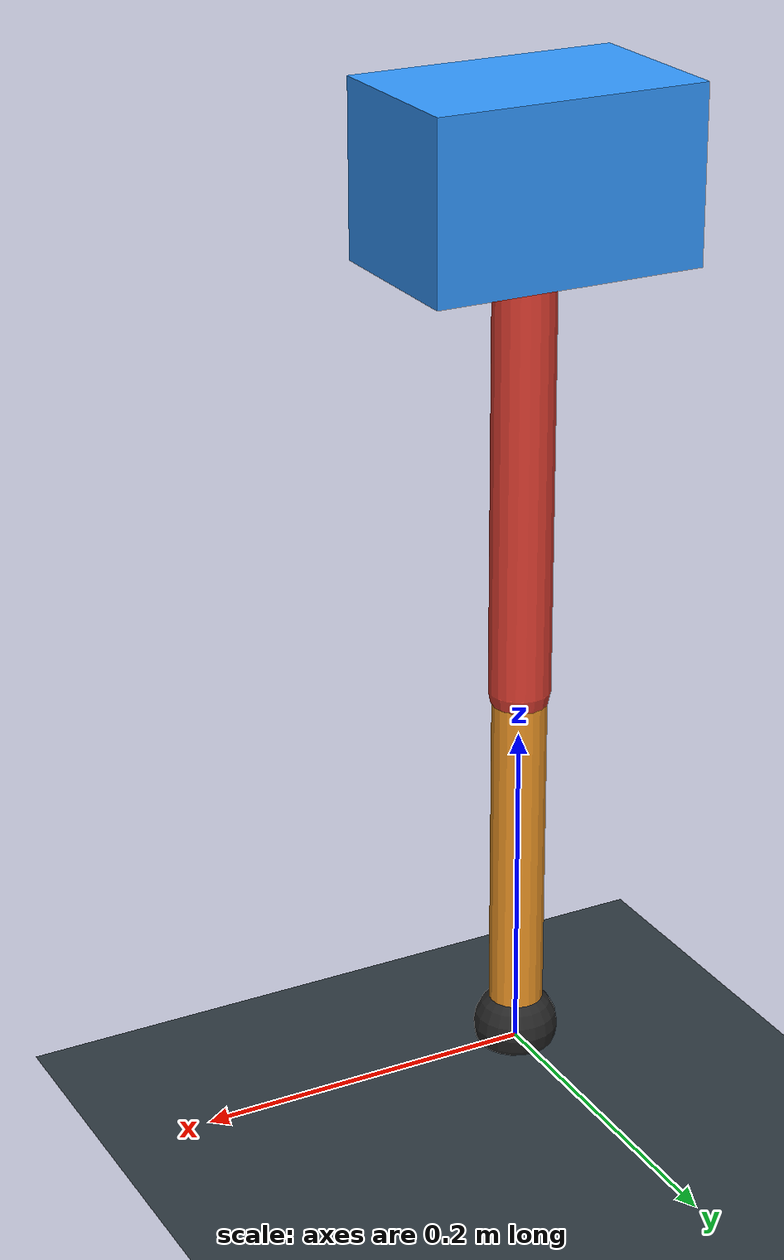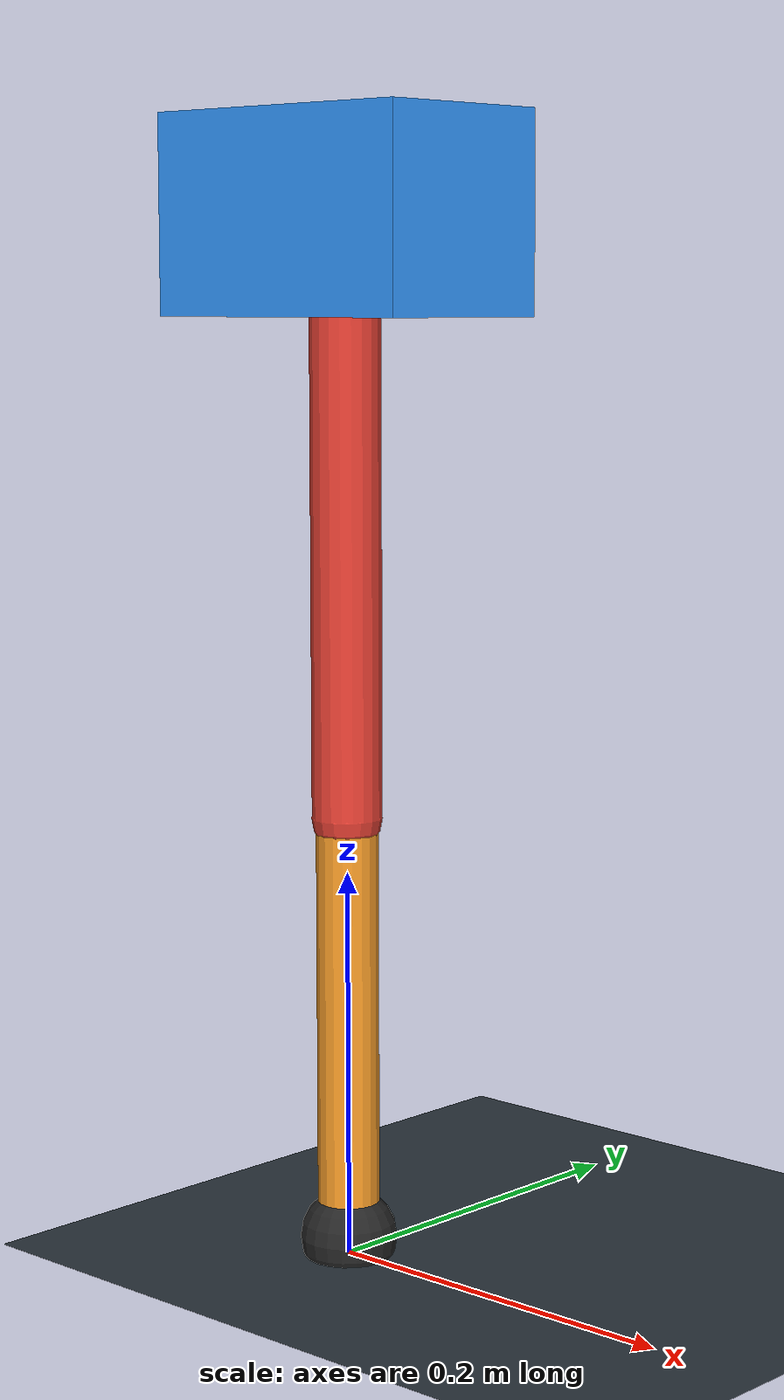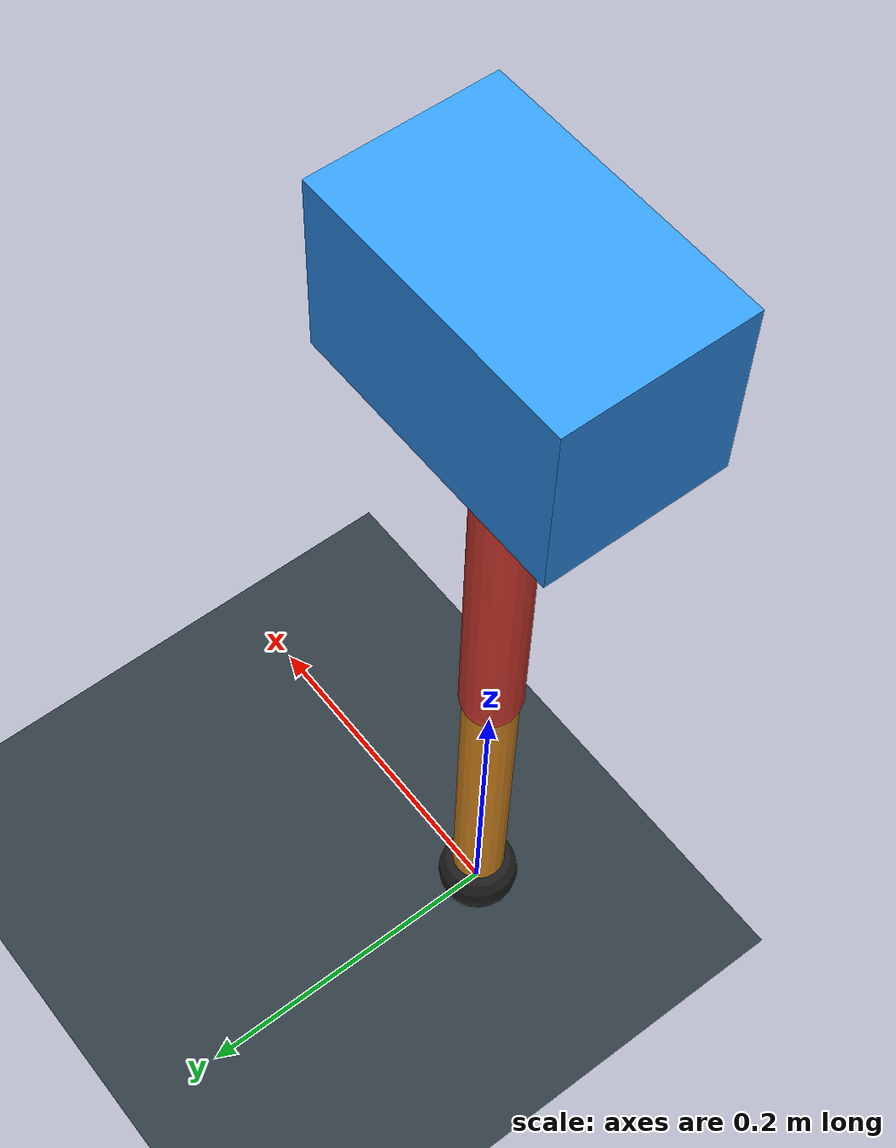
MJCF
<mujoco model="single_axis_two_bar">
  <compiler angle="radian" inertiafromgeom="true"/>
  <option timestep="0.001" integrator="implicitfast" gravity="0 0 -9.81"/>
  <default>
    <joint damping="0.08"/>
    <geom friction="1.2 0.01 0.0001" condim="3"/>
  </default>
  <worldbody>
    <geom name="floor" type="plane" size="5 5 0.1" rgba="0.18 0.22 0.25 1"/>
    <body name="carriage" pos="0 0 0.5298929722395257">
      <joint name="pole_slide" type="slide" axis="0 0 1"/>
      <geom name="payload" type="box" size="0.08 0.05 0.05" mass="2.501220454153189" rgba="0.2 0.6 1 1"/>
      <body name="thigh" pos="0 0 0">
        <joint name="hip" type="hinge" axis="0 1 0"/>
        <geom name="thigh_link" type="capsule" fromto="0 0 0 0 0 -0.30140839030589905" size="0.018" mass="0.21475746085343853" rgba="0.9 0.25 0.2 1"/>
        <body name="shank" pos="0 0 -0.30140839030589905">
          <joint name="knee" type="hinge" axis="0 1 0"/>
          <geom name="shank_link" type="capsule" fromto="0 0 0 0 0 -0.21909982849773563" size="0.016" mass="0.15611152295343597" rgba="0.95 0.6 0.15 1"/>
          <geom name="foot" type="sphere" pos="0 0 -0.21909982849773563" size="0.025" mass="0.03" rgba="0.15 0.15 0.15 1"/>
          <site name="toe" pos="0 0 -0.21909982849773563" size="0.008"/>
        </body>
      </body>
    </body>
  </worldbody>
  <actuator>
    <motor name="hip_motor" joint="hip" ctrlrange="-30.67702369599594 30.67702369599594"/>
    <motor name="knee_motor" joint="knee" ctrlrange="-41.57561171738774 41.57561171738774"/>
  </actuator>
</mujoco>
